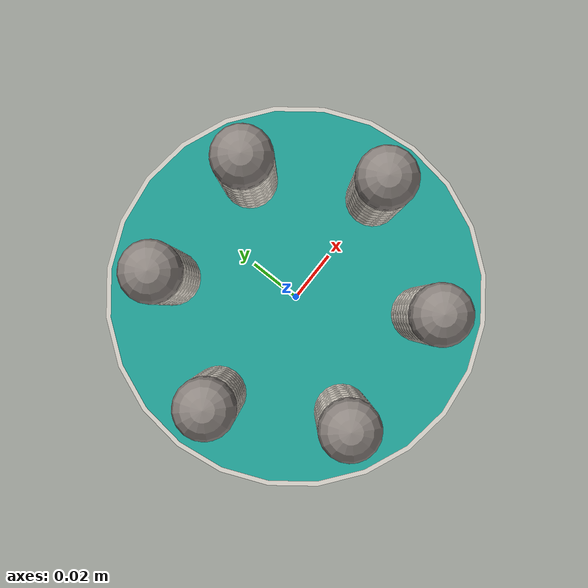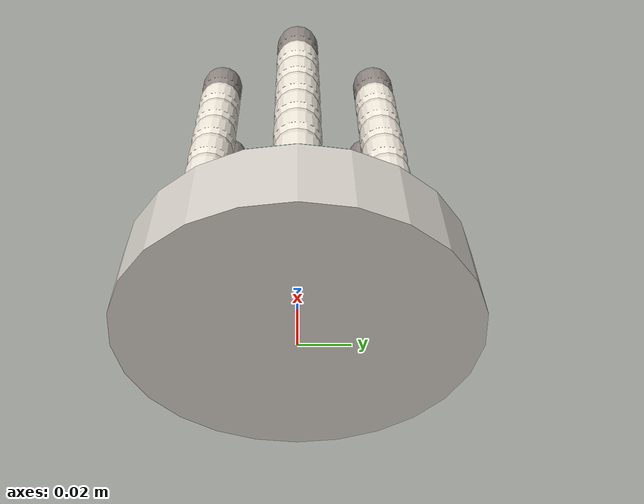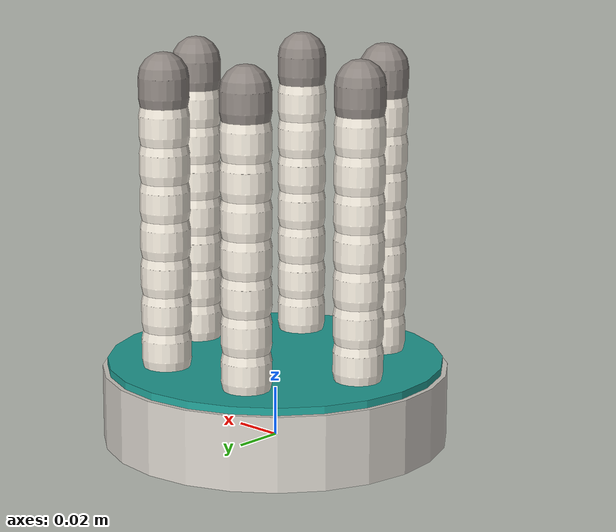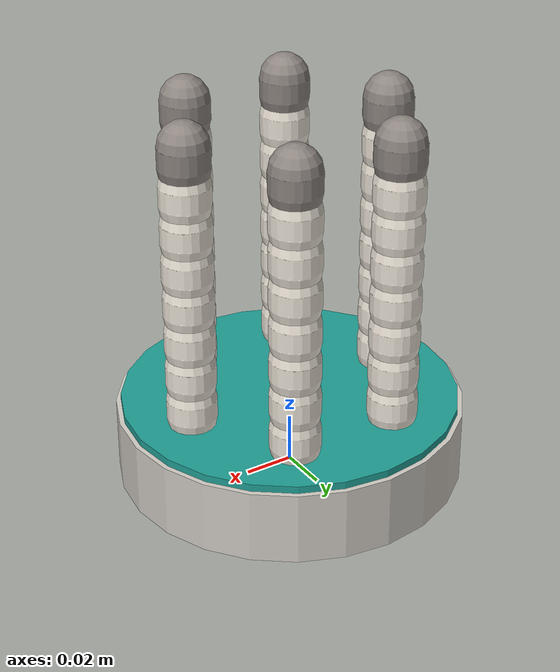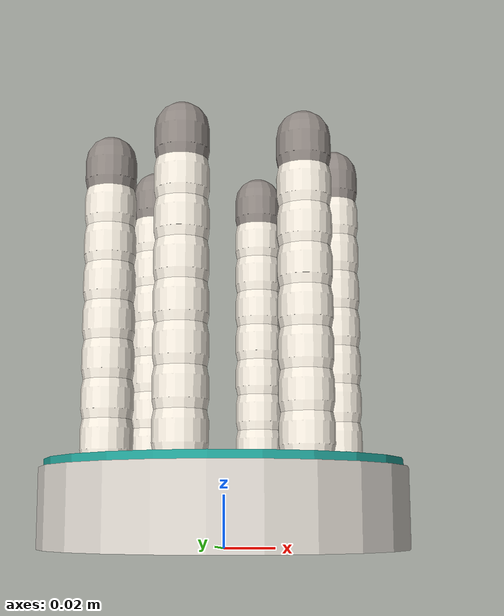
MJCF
<mujoco model="fist6"><compiler angle="radian" autolimits="true"/>
<default><default class="tendril"><joint type="hinge" limited="true" range="-0.663 0.663" damping="0.01" stiffness="4.0" armature="1e-6"/>
<geom condim="4" contype="1" conaffinity="2" friction="0.9 0.02 0.001" solref="0.004 1" solimp="0.92 0.97 0.001"/><site size="0.0005" rgba="0 0 0 0"/>
<tendon width="0.0005" rgba="0.85 0.57 0.16 0"/><position kp="60000" kv="120" ctrllimited="true" ctrlrange="0 0.5" forcelimited="true" forcerange="-200.0 0"/></default></default>
<worldbody><body name="mount" childclass="tendril">
<geom name="disc" type="cylinder" size="0.07 0.015" pos="0 0 0.015" rgba="0.82 0.80 0.77 1" mass="0.6"/>
<geom type="cylinder" size="0.068 0.002" pos="0 0 0.031" rgba="0.12 0.62 0.58 1" contype="0" conaffinity="0" mass="0.001"/>
<site name="t0_b_c0" pos="0.05200 0.00000 0.03"/>
<site name="t0_b_c1" pos="0.04150 0.00606 0.03"/>
<site name="t0_b_c2" pos="0.04150 -0.00606 0.03"/>
<site name="t1_b_c0" pos="0.02950 0.03897 0.03"/>
<site name="t1_b_c1" pos="0.01900 0.04503 0.03"/>
<site name="t1_b_c2" pos="0.01900 0.03291 0.03"/>
<site name="t2_b_c0" pos="-0.01550 0.03897 0.03"/>
<site name="t2_b_c1" pos="-0.02600 0.04503 0.03"/>
<site name="t2_b_c2" pos="-0.02600 0.03291 0.03"/>
<site name="t3_b_c0" pos="-0.03800 0.00000 0.03"/>
<site name="t3_b_c1" pos="-0.04850 0.00606 0.03"/>
<site name="t3_b_c2" pos="-0.04850 -0.00606 0.03"/>
<site name="t4_b_c0" pos="-0.01550 -0.03897 0.03"/>
<site name="t4_b_c1" pos="-0.02600 -0.03291 0.03"/>
<site name="t4_b_c2" pos="-0.02600 -0.04503 0.03"/>
<site name="t5_b_c0" pos="0.02950 -0.03897 0.03"/>
<site name="t5_b_c1" pos="0.01900 -0.03291 0.03"/>
<site name="t5_b_c2" pos="0.01900 -0.04503 0.03"/>
<body name="t0_v0" pos="0.04500 0.00000 0.033">
<joint name="t0_v0_x" axis="1 0 0"/><joint name="t0_v0_y" axis="0 1 0"/>
<geom name="t0_g0" type="capsule" size="0.01 0.00400" pos="0 0 0.0075" mass="0.006" rgba="0.93 0.90 0.85 1"/>
<site name="t0_v0_c0" pos="0.00700 0.00000 0.0075"/>
<site name="t0_v0_c1" pos="-0.00350 0.00606 0.0075"/>
<site name="t0_v0_c2" pos="-0.00350 -0.00606 0.0075"/>
<body name="t0_v1" pos="0 0 0.015">
<joint name="t0_v1_x" axis="1 0 0"/><joint name="t0_v1_y" axis="0 1 0"/>
<geom name="t0_g1" type="capsule" size="0.01 0.00400" pos="0 0 0.0075" mass="0.006" rgba="0.93 0.90 0.85 1"/>
<site name="t0_v1_c0" pos="0.00700 0.00000 0.0075"/>
<site name="t0_v1_c1" pos="-0.00350 0.00606 0.0075"/>
<site name="t0_v1_c2" pos="-0.00350 -0.00606 0.0075"/>
<body name="t0_v2" pos="0 0 0.015">
<joint name="t0_v2_x" axis="1 0 0"/><joint name="t0_v2_y" axis="0 1 0"/>
<geom name="t0_g2" type="capsule" size="0.01 0.00400" pos="0 0 0.0075" mass="0.006" rgba="0.93 0.90 0.85 1"/>
<site name="t0_v2_c0" pos="0.00700 0.00000 0.0075"/>
<site name="t0_v2_c1" pos="-0.00350 0.00606 0.0075"/>
<site name="t0_v2_c2" pos="-0.00350 -0.00606 0.0075"/>
<body name="t0_v3" pos="0 0 0.015">
<joint name="t0_v3_x" axis="1 0 0"/><joint name="t0_v3_y" axis="0 1 0"/>
<geom name="t0_g3" type="capsule" size="0.01 0.00400" pos="0 0 0.0075" mass="0.006" rgba="0.93 0.90 0.85 1"/>
<site name="t0_v3_c0" pos="0.00700 0.00000 0.0075"/>
<site name="t0_v3_c1" pos="-0.00350 0.00606 0.0075"/>
<site name="t0_v3_c2" pos="-0.00350 -0.00606 0.0075"/>
<body name="t0_v4" pos="0 0 0.015">
<joint name="t0_v4_x" axis="1 0 0"/><joint name="t0_v4_y" axis="0 1 0"/>
<geom name="t0_g4" type="capsule" size="0.01 0.00400" pos="0 0 0.0075" mass="0.006" rgba="0.93 0.90 0.85 1"/>
<site name="t0_v4_c0" pos="0.00700 0.00000 0.0075"/>
<site name="t0_v4_c1" pos="-0.00350 0.00606 0.0075"/>
<site name="t0_v4_c2" pos="-0.00350 -0.00606 0.0075"/>
<body name="t0_v5" pos="0 0 0.015">
<joint name="t0_v5_x" axis="1 0 0"/><joint name="t0_v5_y" axis="0 1 0"/>
<geom name="t0_g5" type="capsule" size="0.01 0.00400" pos="0 0 0.0075" mass="0.006" rgba="0.93 0.90 0.85 1"/>
<site name="t0_v5_c0" pos="0.00700 0.00000 0.0075"/>
<site name="t0_v5_c1" pos="-0.00350 0.00606 0.0075"/>
<site name="t0_v5_c2" pos="-0.00350 -0.00606 0.0075"/>
<body name="t0_v6" pos="0 0 0.015">
<joint name="t0_v6_x" axis="1 0 0"/><joint name="t0_v6_y" axis="0 1 0"/>
<geom name="t0_g6" type="capsule" size="0.01 0.00400" pos="0 0 0.0075" mass="0.006" rgba="0.93 0.90 0.85 1"/>
<site name="t0_v6_c0" pos="0.00700 0.00000 0.0075"/>
<site name="t0_v6_c1" pos="-0.00350 0.00606 0.0075"/>
<site name="t0_v6_c2" pos="-0.00350 -0.00606 0.0075"/>
<body name="t0_v7" pos="0 0 0.015">
<joint name="t0_v7_x" axis="1 0 0"/><joint name="t0_v7_y" axis="0 1 0"/>
<geom name="t0_g7" type="capsule" size="0.01 0.00400" pos="0 0 0.0075" mass="0.006" rgba="0.55 0.52 0.50 1"/>
<site name="t0_v7_c0" pos="0.00700 0.00000 0.0075"/>
<site name="t0_v7_c1" pos="-0.00350 0.00606 0.0075"/>
<site name="t0_v7_c2" pos="-0.00350 -0.00606 0.0075"/>
</body></body></body></body></body></body></body></body>
<body name="t1_v0" pos="0.02250 0.03897 0.033">
<joint name="t1_v0_x" axis="1 0 0"/><joint name="t1_v0_y" axis="0 1 0"/>
<geom name="t1_g0" type="capsule" size="0.01 0.00400" pos="0 0 0.0075" mass="0.006" rgba="0.93 0.90 0.85 1"/>
<site name="t1_v0_c0" pos="0.00700 0.00000 0.0075"/>
<site name="t1_v0_c1" pos="-0.00350 0.00606 0.0075"/>
<site name="t1_v0_c2" pos="-0.00350 -0.00606 0.0075"/>
<body name="t1_v1" pos="0 0 0.015">
<joint name="t1_v1_x" axis="1 0 0"/><joint name="t1_v1_y" axis="0 1 0"/>
<geom name="t1_g1" type="capsule" size="0.01 0.00400" pos="0 0 0.0075" mass="0.006" rgba="0.93 0.90 0.85 1"/>
<site name="t1_v1_c0" pos="0.00700 0.00000 0.0075"/>
<site name="t1_v1_c1" pos="-0.00350 0.00606 0.0075"/>
<site name="t1_v1_c2" pos="-0.00350 -0.00606 0.0075"/>
<body name="t1_v2" pos="0 0 0.015">
<joint name="t1_v2_x" axis="1 0 0"/><joint name="t1_v2_y" axis="0 1 0"/>
<geom name="t1_g2" type="capsule" size="0.01 0.00400" pos="0 0 0.0075" mass="0.006" rgba="0.93 0.90 0.85 1"/>
<site name="t1_v2_c0" pos="0.00700 0.00000 0.0075"/>
<site name="t1_v2_c1" pos="-0.00350 0.00606 0.0075"/>
<site name="t1_v2_c2" pos="-0.00350 -0.00606 0.0075"/>
<body name="t1_v3" pos="0 0 0.015">
<joint name="t1_v3_x" axis="1 0 0"/><joint name="t1_v3_y" axis="0 1 0"/>
<geom name="t1_g3" type="capsule" size="0.01 0.00400" pos="0 0 0.0075" mass="0.006" rgba="0.93 0.90 0.85 1"/>
<site name="t1_v3_c0" pos="0.00700 0.00000 0.0075"/>
<site name="t1_v3_c1" pos="-0.00350 0.00606 0.0075"/>
<site name="t1_v3_c2" pos="-0.00350 -0.00606 0.0075"/>
<body name="t1_v4" pos="0 0 0.015">
<joint name="t1_v4_x" axis="1 0 0"/><joint name="t1_v4_y" axis="0 1 0"/>
<geom name="t1_g4" type="capsule" size="0.01 0.00400" pos="0 0 0.0075" mass="0.006" rgba="0.93 0.90 0.85 1"/>
<site name="t1_v4_c0" pos="0.00700 0.00000 0.0075"/>
<site name="t1_v4_c1" pos="-0.00350 0.00606 0.0075"/>
<site name="t1_v4_c2" pos="-0.00350 -0.00606 0.0075"/>
<body name="t1_v5" pos="0 0 0.015">
<joint name="t1_v5_x" axis="1 0 0"/><joint name="t1_v5_y" axis="0 1 0"/>
<geom name="t1_g5" type="capsule" size="0.01 0.00400" pos="0 0 0.0075" mass="0.006" rgba="0.93 0.90 0.85 1"/>
<site name="t1_v5_c0" pos="0.00700 0.00000 0.0075"/>
<site name="t1_v5_c1" pos="-0.00350 0.00606 0.0075"/>
<site name="t1_v5_c2" pos="-0.00350 -0.00606 0.0075"/>
<body name="t1_v6" pos="0 0 0.015">
<joint name="t1_v6_x" axis="1 0 0"/><joint name="t1_v6_y" axis="0 1 0"/>
<geom name="t1_g6" type="capsule" size="0.01 0.00400" pos="0 0 0.0075" mass="0.006" rgba="0.93 0.90 0.85 1"/>
<site name="t1_v6_c0" pos="0.00700 0.00000 0.0075"/>
<site name="t1_v6_c1" pos="-0.00350 0.00606 0.0075"/>
<site name="t1_v6_c2" pos="-0.00350 -0.00606 0.0075"/>
<body name="t1_v7" pos="0 0 0.015">
<joint name="t1_v7_x" axis="1 0 0"/><joint name="t1_v7_y" axis="0 1 0"/>
<geom name="t1_g7" type="capsule" size="0.01 0.00400" pos="0 0 0.0075" mass="0.006" rgba="0.55 0.52 0.50 1"/>
<site name="t1_v7_c0" pos="0.00700 0.00000 0.0075"/>
<site name="t1_v7_c1" pos="-0.00350 0.00606 0.0075"/>
<site name="t1_v7_c2" pos="-0.00350 -0.00606 0.0075"/>
</body></body></body></body></body></body></body></body>
<body name="t2_v0" pos="-0.02250 0.03897 0.033">
<joint name="t2_v0_x" axis="1 0 0"/><joint name="t2_v0_y" axis="0 1 0"/>
<geom name="t2_g0" type="capsule" size="0.01 0.00400" pos="0 0 0.0075" mass="0.006" rgba="0.93 0.90 0.85 1"/>
<site name="t2_v0_c0" pos="0.00700 0.00000 0.0075"/>
<site name="t2_v0_c1" pos="-0.00350 0.00606 0.0075"/>
<site name="t2_v0_c2" pos="-0.00350 -0.00606 0.0075"/>
<body name="t2_v1" pos="0 0 0.015">
<joint name="t2_v1_x" axis="1 0 0"/><joint name="t2_v1_y" axis="0 1 0"/>
<geom name="t2_g1" type="capsule" size="0.01 0.00400" pos="0 0 0.0075" mass="0.006" rgba="0.93 0.90 0.85 1"/>
<site name="t2_v1_c0" pos="0.00700 0.00000 0.0075"/>
<site name="t2_v1_c1" pos="-0.00350 0.00606 0.0075"/>
<site name="t2_v1_c2" pos="-0.00350 -0.00606 0.0075"/>
<body name="t2_v2" pos="0 0 0.015">
<joint name="t2_v2_x" axis="1 0 0"/><joint name="t2_v2_y" axis="0 1 0"/>
<geom name="t2_g2" type="capsule" size="0.01 0.00400" pos="0 0 0.0075" mass="0.006" rgba="0.93 0.90 0.85 1"/>
<site name="t2_v2_c0" pos="0.00700 0.00000 0.0075"/>
<site name="t2_v2_c1" pos="-0.00350 0.00606 0.0075"/>
<site name="t2_v2_c2" pos="-0.00350 -0.00606 0.0075"/>
<body name="t2_v3" pos="0 0 0.015">
<joint name="t2_v3_x" axis="1 0 0"/><joint name="t2_v3_y" axis="0 1 0"/>
<geom name="t2_g3" type="capsule" size="0.01 0.00400" pos="0 0 0.0075" mass="0.006" rgba="0.93 0.90 0.85 1"/>
<site name="t2_v3_c0" pos="0.00700 0.00000 0.0075"/>
<site name="t2_v3_c1" pos="-0.00350 0.00606 0.0075"/>
<site name="t2_v3_c2" pos="-0.00350 -0.00606 0.0075"/>
<body name="t2_v4" pos="0 0 0.015">
<joint name="t2_v4_x" axis="1 0 0"/><joint name="t2_v4_y" axis="0 1 0"/>
<geom name="t2_g4" type="capsule" size="0.01 0.00400" pos="0 0 0.0075" mass="0.006" rgba="0.93 0.90 0.85 1"/>
<site name="t2_v4_c0" pos="0.00700 0.00000 0.0075"/>
<site name="t2_v4_c1" pos="-0.00350 0.00606 0.0075"/>
<site name="t2_v4_c2" pos="-0.00350 -0.00606 0.0075"/>
<body name="t2_v5" pos="0 0 0.015">
<joint name="t2_v5_x" axis="1 0 0"/><joint name="t2_v5_y" axis="0 1 0"/>
<geom name="t2_g5" type="capsule" size="0.01 0.00400" pos="0 0 0.0075" mass="0.006" rgba="0.93 0.90 0.85 1"/>
<site name="t2_v5_c0" pos="0.00700 0.00000 0.0075"/>
<site name="t2_v5_c1" pos="-0.00350 0.00606 0.0075"/>
<site name="t2_v5_c2" pos="-0.00350 -0.00606 0.0075"/>
<body name="t2_v6" pos="0 0 0.015">
<joint name="t2_v6_x" axis="1 0 0"/><joint name="t2_v6_y" axis="0 1 0"/>
<geom name="t2_g6" type="capsule" size="0.01 0.00400" pos="0 0 0.0075" mass="0.006" rgba="0.93 0.90 0.85 1"/>
<site name="t2_v6_c0" pos="0.00700 0.00000 0.0075"/>
<site name="t2_v6_c1" pos="-0.00350 0.00606 0.0075"/>
<site name="t2_v6_c2" pos="-0.00350 -0.00606 0.0075"/>
<body name="t2_v7" pos="0 0 0.015">
<joint name="t2_v7_x" axis="1 0 0"/><joint name="t2_v7_y" axis="0 1 0"/>
<geom name="t2_g7" type="capsule" size="0.01 0.00400" pos="0 0 0.0075" mass="0.006" rgba="0.55 0.52 0.50 1"/>
<site name="t2_v7_c0" pos="0.00700 0.00000 0.0075"/>
<site name="t2_v7_c1" pos="-0.00350 0.00606 0.0075"/>
<site name="t2_v7_c2" pos="-0.00350 -0.00606 0.0075"/>
</body></body></body></body></body></body></body></body>
<body name="t3_v0" pos="-0.04500 0.00000 0.033">
<joint name="t3_v0_x" axis="1 0 0"/><joint name="t3_v0_y" axis="0 1 0"/>
<geom name="t3_g0" type="capsule" size="0.01 0.00400" pos="0 0 0.0075" mass="0.006" rgba="0.93 0.90 0.85 1"/>
<site name="t3_v0_c0" pos="0.00700 0.00000 0.0075"/>
<site name="t3_v0_c1" pos="-0.00350 0.00606 0.0075"/>
<site name="t3_v0_c2" pos="-0.00350 -0.00606 0.0075"/>
<body name="t3_v1" pos="0 0 0.015">
<joint name="t3_v1_x" axis="1 0 0"/><joint name="t3_v1_y" axis="0 1 0"/>
<geom name="t3_g1" type="capsule" size="0.01 0.00400" pos="0 0 0.0075" mass="0.006" rgba="0.93 0.90 0.85 1"/>
<site name="t3_v1_c0" pos="0.00700 0.00000 0.0075"/>
<site name="t3_v1_c1" pos="-0.00350 0.00606 0.0075"/>
<site name="t3_v1_c2" pos="-0.00350 -0.00606 0.0075"/>
<body name="t3_v2" pos="0 0 0.015">
<joint name="t3_v2_x" axis="1 0 0"/><joint name="t3_v2_y" axis="0 1 0"/>
<geom name="t3_g2" type="capsule" size="0.01 0.00400" pos="0 0 0.0075" mass="0.006" rgba="0.93 0.90 0.85 1"/>
<site name="t3_v2_c0" pos="0.00700 0.00000 0.0075"/>
<site name="t3_v2_c1" pos="-0.00350 0.00606 0.0075"/>
<site name="t3_v2_c2" pos="-0.00350 -0.00606 0.0075"/>
<body name="t3_v3" pos="0 0 0.015">
<joint name="t3_v3_x" axis="1 0 0"/><joint name="t3_v3_y" axis="0 1 0"/>
<geom name="t3_g3" type="capsule" size="0.01 0.00400" pos="0 0 0.0075" mass="0.006" rgba="0.93 0.90 0.85 1"/>
<site name="t3_v3_c0" pos="0.00700 0.00000 0.0075"/>
<site name="t3_v3_c1" pos="-0.00350 0.00606 0.0075"/>
<site name="t3_v3_c2" pos="-0.00350 -0.00606 0.0075"/>
<body name="t3_v4" pos="0 0 0.015">
<joint name="t3_v4_x" axis="1 0 0"/><joint name="t3_v4_y" axis="0 1 0"/>
<geom name="t3_g4" type="capsule" size="0.01 0.00400" pos="0 0 0.0075" mass="0.006" rgba="0.93 0.90 0.85 1"/>
<site name="t3_v4_c0" pos="0.00700 0.00000 0.0075"/>
<site name="t3_v4_c1" pos="-0.00350 0.00606 0.0075"/>
<site name="t3_v4_c2" pos="-0.00350 -0.00606 0.0075"/>
<body name="t3_v5" pos="0 0 0.015">
<joint name="t3_v5_x" axis="1 0 0"/><joint name="t3_v5_y" axis="0 1 0"/>
<geom name="t3_g5" type="capsule" size="0.01 0.00400" pos="0 0 0.0075" mass="0.006" rgba="0.93 0.90 0.85 1"/>
<site name="t3_v5_c0" pos="0.00700 0.00000 0.0075"/>
<site name="t3_v5_c1" pos="-0.00350 0.00606 0.0075"/>
<site name="t3_v5_c2" pos="-0.00350 -0.00606 0.0075"/>
<body name="t3_v6" pos="0 0 0.015">
<joint name="t3_v6_x" axis="1 0 0"/><joint name="t3_v6_y" axis="0 1 0"/>
<geom name="t3_g6" type="capsule" size="0.01 0.00400" pos="0 0 0.0075" mass="0.006" rgba="0.93 0.90 0.85 1"/>
<site name="t3_v6_c0" pos="0.00700 0.00000 0.0075"/>
<site name="t3_v6_c1" pos="-0.00350 0.00606 0.0075"/>
<site name="t3_v6_c2" pos="-0.00350 -0.00606 0.0075"/>
<body name="t3_v7" pos="0 0 0.015">
<joint name="t3_v7_x" axis="1 0 0"/><joint name="t3_v7_y" axis="0 1 0"/>
<geom name="t3_g7" type="capsule" size="0.01 0.00400" pos="0 0 0.0075" mass="0.006" rgba="0.55 0.52 0.50 1"/>
<site name="t3_v7_c0" pos="0.00700 0.00000 0.0075"/>
<site name="t3_v7_c1" pos="-0.00350 0.00606 0.0075"/>
<site name="t3_v7_c2" pos="-0.00350 -0.00606 0.0075"/>
</body></body></body></body></body></body></body></body>
<body name="t4_v0" pos="-0.02250 -0.03897 0.033">
<joint name="t4_v0_x" axis="1 0 0"/><joint name="t4_v0_y" axis="0 1 0"/>
<geom name="t4_g0" type="capsule" size="0.01 0.00400" pos="0 0 0.0075" mass="0.006" rgba="0.93 0.90 0.85 1"/>
<site name="t4_v0_c0" pos="0.00700 0.00000 0.0075"/>
<site name="t4_v0_c1" pos="-0.00350 0.00606 0.0075"/>
<site name="t4_v0_c2" pos="-0.00350 -0.00606 0.0075"/>
<body name="t4_v1" pos="0 0 0.015">
<joint name="t4_v1_x" axis="1 0 0"/><joint name="t4_v1_y" axis="0 1 0"/>
<geom name="t4_g1" type="capsule" size="0.01 0.00400" pos="0 0 0.0075" mass="0.006" rgba="0.93 0.90 0.85 1"/>
<site name="t4_v1_c0" pos="0.00700 0.00000 0.0075"/>
<site name="t4_v1_c1" pos="-0.00350 0.00606 0.0075"/>
<site name="t4_v1_c2" pos="-0.00350 -0.00606 0.0075"/>
<body name="t4_v2" pos="0 0 0.015">
<joint name="t4_v2_x" axis="1 0 0"/><joint name="t4_v2_y" axis="0 1 0"/>
<geom name="t4_g2" type="capsule" size="0.01 0.00400" pos="0 0 0.0075" mass="0.006" rgba="0.93 0.90 0.85 1"/>
<site name="t4_v2_c0" pos="0.00700 0.00000 0.0075"/>
<site name="t4_v2_c1" pos="-0.00350 0.00606 0.0075"/>
<site name="t4_v2_c2" pos="-0.00350 -0.00606 0.0075"/>
<body name="t4_v3" pos="0 0 0.015">
<joint name="t4_v3_x" axis="1 0 0"/><joint name="t4_v3_y" axis="0 1 0"/>
<geom name="t4_g3" type="capsule" size="0.01 0.00400" pos="0 0 0.0075" mass="0.006" rgba="0.93 0.90 0.85 1"/>
<site name="t4_v3_c0" pos="0.00700 0.00000 0.0075"/>
<site name="t4_v3_c1" pos="-0.00350 0.00606 0.0075"/>
<site name="t4_v3_c2" pos="-0.00350 -0.00606 0.0075"/>
<body name="t4_v4" pos="0 0 0.015">
<joint name="t4_v4_x" axis="1 0 0"/><joint name="t4_v4_y" axis="0 1 0"/>
<geom name="t4_g4" type="capsule" size="0.01 0.00400" pos="0 0 0.0075" mass="0.006" rgba="0.93 0.90 0.85 1"/>
<site name="t4_v4_c0" pos="0.00700 0.00000 0.0075"/>
<site name="t4_v4_c1" pos="-0.00350 0.00606 0.0075"/>
<site name="t4_v4_c2" pos="-0.00350 -0.00606 0.0075"/>
<body name="t4_v5" pos="0 0 0.015">
<joint name="t4_v5_x" axis="1 0 0"/><joint name="t4_v5_y" axis="0 1 0"/>
<geom name="t4_g5" type="capsule" size="0.01 0.00400" pos="0 0 0.0075" mass="0.006" rgba="0.93 0.90 0.85 1"/>
<site name="t4_v5_c0" pos="0.00700 0.00000 0.0075"/>
<site name="t4_v5_c1" pos="-0.00350 0.00606 0.0075"/>
<site name="t4_v5_c2" pos="-0.00350 -0.00606 0.0075"/>
<body name="t4_v6" pos="0 0 0.015">
<joint name="t4_v6_x" axis="1 0 0"/><joint name="t4_v6_y" axis="0 1 0"/>
<geom name="t4_g6" type="capsule" size="0.01 0.00400" pos="0 0 0.0075" mass="0.006" rgba="0.93 0.90 0.85 1"/>
<site name="t4_v6_c0" pos="0.00700 0.00000 0.0075"/>
<site name="t4_v6_c1" pos="-0.00350 0.00606 0.0075"/>
<site name="t4_v6_c2" pos="-0.00350 -0.00606 0.0075"/>
<body name="t4_v7" pos="0 0 0.015">
<joint name="t4_v7_x" axis="1 0 0"/><joint name="t4_v7_y" axis="0 1 0"/>
<geom name="t4_g7" type="capsule" size="0.01 0.00400" pos="0 0 0.0075" mass="0.006" rgba="0.55 0.52 0.50 1"/>
<site name="t4_v7_c0" pos="0.00700 0.00000 0.0075"/>
<site name="t4_v7_c1" pos="-0.00350 0.00606 0.0075"/>
<site name="t4_v7_c2" pos="-0.00350 -0.00606 0.0075"/>
</body></body></body></body></body></body></body></body>
<body name="t5_v0" pos="0.02250 -0.03897 0.033">
<joint name="t5_v0_x" axis="1 0 0"/><joint name="t5_v0_y" axis="0 1 0"/>
<geom name="t5_g0" type="capsule" size="0.01 0.00400" pos="0 0 0.0075" mass="0.006" rgba="0.93 0.90 0.85 1"/>
<site name="t5_v0_c0" pos="0.00700 0.00000 0.0075"/>
<site name="t5_v0_c1" pos="-0.00350 0.00606 0.0075"/>
<site name="t5_v0_c2" pos="-0.00350 -0.00606 0.0075"/>
<body name="t5_v1" pos="0 0 0.015">
<joint name="t5_v1_x" axis="1 0 0"/><joint name="t5_v1_y" axis="0 1 0"/>
<geom name="t5_g1" type="capsule" size="0.01 0.00400" pos="0 0 0.0075" mass="0.006" rgba="0.93 0.90 0.85 1"/>
<site name="t5_v1_c0" pos="0.00700 0.00000 0.0075"/>
<site name="t5_v1_c1" pos="-0.00350 0.00606 0.0075"/>
<site name="t5_v1_c2" pos="-0.00350 -0.00606 0.0075"/>
<body name="t5_v2" pos="0 0 0.015">
<joint name="t5_v2_x" axis="1 0 0"/><joint name="t5_v2_y" axis="0 1 0"/>
<geom name="t5_g2" type="capsule" size="0.01 0.00400" pos="0 0 0.0075" mass="0.006" rgba="0.93 0.90 0.85 1"/>
<site name="t5_v2_c0" pos="0.00700 0.00000 0.0075"/>
<site name="t5_v2_c1" pos="-0.00350 0.00606 0.0075"/>
<site name="t5_v2_c2" pos="-0.00350 -0.00606 0.0075"/>
<body name="t5_v3" pos="0 0 0.015">
<joint name="t5_v3_x" axis="1 0 0"/><joint name="t5_v3_y" axis="0 1 0"/>
<geom name="t5_g3" type="capsule" size="0.01 0.00400" pos="0 0 0.0075" mass="0.006" rgba="0.93 0.90 0.85 1"/>
<site name="t5_v3_c0" pos="0.00700 0.00000 0.0075"/>
<site name="t5_v3_c1" pos="-0.00350 0.00606 0.0075"/>
<site name="t5_v3_c2" pos="-0.00350 -0.00606 0.0075"/>
<body name="t5_v4" pos="0 0 0.015">
<joint name="t5_v4_x" axis="1 0 0"/><joint name="t5_v4_y" axis="0 1 0"/>
<geom name="t5_g4" type="capsule" size="0.01 0.00400" pos="0 0 0.0075" mass="0.006" rgba="0.93 0.90 0.85 1"/>
<site name="t5_v4_c0" pos="0.00700 0.00000 0.0075"/>
<site name="t5_v4_c1" pos="-0.00350 0.00606 0.0075"/>
<site name="t5_v4_c2" pos="-0.00350 -0.00606 0.0075"/>
<body name="t5_v5" pos="0 0 0.015">
<joint name="t5_v5_x" axis="1 0 0"/><joint name="t5_v5_y" axis="0 1 0"/>
<geom name="t5_g5" type="capsule" size="0.01 0.00400" pos="0 0 0.0075" mass="0.006" rgba="0.93 0.90 0.85 1"/>
<site name="t5_v5_c0" pos="0.00700 0.00000 0.0075"/>
<site name="t5_v5_c1" pos="-0.00350 0.00606 0.0075"/>
<site name="t5_v5_c2" pos="-0.00350 -0.00606 0.0075"/>
<body name="t5_v6" pos="0 0 0.015">
<joint name="t5_v6_x" axis="1 0 0"/><joint name="t5_v6_y" axis="0 1 0"/>
<geom name="t5_g6" type="capsule" size="0.01 0.00400" pos="0 0 0.0075" mass="0.006" rgba="0.93 0.90 0.85 1"/>
<site name="t5_v6_c0" pos="0.00700 0.00000 0.0075"/>
<site name="t5_v6_c1" pos="-0.00350 0.00606 0.0075"/>
<site name="t5_v6_c2" pos="-0.00350 -0.00606 0.0075"/>
<body name="t5_v7" pos="0 0 0.015">
<joint name="t5_v7_x" axis="1 0 0"/><joint name="t5_v7_y" axis="0 1 0"/>
<geom name="t5_g7" type="capsule" size="0.01 0.00400" pos="0 0 0.0075" mass="0.006" rgba="0.55 0.52 0.50 1"/>
<site name="t5_v7_c0" pos="0.00700 0.00000 0.0075"/>
<site name="t5_v7_c1" pos="-0.00350 0.00606 0.0075"/>
<site name="t5_v7_c2" pos="-0.00350 -0.00606 0.0075"/>
</body></body></body></body></body></body></body></body>
</body></worldbody><tendon>
<spatial name="t0_c0" class="tendril"><site site="t0_b_c0"/><site site="t0_v0_c0"/><site site="t0_v1_c0"/><site site="t0_v2_c0"/><site site="t0_v3_c0"/><site site="t0_v4_c0"/><site site="t0_v5_c0"/><site site="t0_v6_c0"/><site site="t0_v7_c0"/></spatial>
<spatial name="t0_c1" class="tendril"><site site="t0_b_c1"/><site site="t0_v0_c1"/><site site="t0_v1_c1"/><site site="t0_v2_c1"/><site site="t0_v3_c1"/><site site="t0_v4_c1"/><site site="t0_v5_c1"/><site site="t0_v6_c1"/><site site="t0_v7_c1"/></spatial>
<spatial name="t0_c2" class="tendril"><site site="t0_b_c2"/><site site="t0_v0_c2"/><site site="t0_v1_c2"/><site site="t0_v2_c2"/><site site="t0_v3_c2"/><site site="t0_v4_c2"/><site site="t0_v5_c2"/><site site="t0_v6_c2"/><site site="t0_v7_c2"/></spatial>
<spatial name="t1_c0" class="tendril"><site site="t1_b_c0"/><site site="t1_v0_c0"/><site site="t1_v1_c0"/><site site="t1_v2_c0"/><site site="t1_v3_c0"/><site site="t1_v4_c0"/><site site="t1_v5_c0"/><site site="t1_v6_c0"/><site site="t1_v7_c0"/></spatial>
<spatial name="t1_c1" class="tendril"><site site="t1_b_c1"/><site site="t1_v0_c1"/><site site="t1_v1_c1"/><site site="t1_v2_c1"/><site site="t1_v3_c1"/><site site="t1_v4_c1"/><site site="t1_v5_c1"/><site site="t1_v6_c1"/><site site="t1_v7_c1"/></spatial>
<spatial name="t1_c2" class="tendril"><site site="t1_b_c2"/><site site="t1_v0_c2"/><site site="t1_v1_c2"/><site site="t1_v2_c2"/><site site="t1_v3_c2"/><site site="t1_v4_c2"/><site site="t1_v5_c2"/><site site="t1_v6_c2"/><site site="t1_v7_c2"/></spatial>
<spatial name="t2_c0" class="tendril"><site site="t2_b_c0"/><site site="t2_v0_c0"/><site site="t2_v1_c0"/><site site="t2_v2_c0"/><site site="t2_v3_c0"/><site site="t2_v4_c0"/><site site="t2_v5_c0"/><site site="t2_v6_c0"/><site site="t2_v7_c0"/></spatial>
<spatial name="t2_c1" class="tendril"><site site="t2_b_c1"/><site site="t2_v0_c1"/><site site="t2_v1_c1"/><site site="t2_v2_c1"/><site site="t2_v3_c1"/><site site="t2_v4_c1"/><site site="t2_v5_c1"/><site site="t2_v6_c1"/><site site="t2_v7_c1"/></spatial>
<spatial name="t2_c2" class="tendril"><site site="t2_b_c2"/><site site="t2_v0_c2"/><site site="t2_v1_c2"/><site site="t2_v2_c2"/><site site="t2_v3_c2"/><site site="t2_v4_c2"/><site site="t2_v5_c2"/><site site="t2_v6_c2"/><site site="t2_v7_c2"/></spatial>
<spatial name="t3_c0" class="tendril"><site site="t3_b_c0"/><site site="t3_v0_c0"/><site site="t3_v1_c0"/><site site="t3_v2_c0"/><site site="t3_v3_c0"/><site site="t3_v4_c0"/><site site="t3_v5_c0"/><site site="t3_v6_c0"/><site site="t3_v7_c0"/></spatial>
<spatial name="t3_c1" class="tendril"><site site="t3_b_c1"/><site site="t3_v0_c1"/><site site="t3_v1_c1"/><site site="t3_v2_c1"/><site site="t3_v3_c1"/><site site="t3_v4_c1"/><site site="t3_v5_c1"/><site site="t3_v6_c1"/><site site="t3_v7_c1"/></spatial>
<spatial name="t3_c2" class="tendril"><site site="t3_b_c2"/><site site="t3_v0_c2"/><site site="t3_v1_c2"/><site site="t3_v2_c2"/><site site="t3_v3_c2"/><site site="t3_v4_c2"/><site site="t3_v5_c2"/><site site="t3_v6_c2"/><site site="t3_v7_c2"/></spatial>
<spatial name="t4_c0" class="tendril"><site site="t4_b_c0"/><site site="t4_v0_c0"/><site site="t4_v1_c0"/><site site="t4_v2_c0"/><site site="t4_v3_c0"/><site site="t4_v4_c0"/><site site="t4_v5_c0"/><site site="t4_v6_c0"/><site site="t4_v7_c0"/></spatial>
<spatial name="t4_c1" class="tendril"><site site="t4_b_c1"/><site site="t4_v0_c1"/><site site="t4_v1_c1"/><site site="t4_v2_c1"/><site site="t4_v3_c1"/><site site="t4_v4_c1"/><site site="t4_v5_c1"/><site site="t4_v6_c1"/><site site="t4_v7_c1"/></spatial>
<spatial name="t4_c2" class="tendril"><site site="t4_b_c2"/><site site="t4_v0_c2"/><site site="t4_v1_c2"/><site site="t4_v2_c2"/><site site="t4_v3_c2"/><site site="t4_v4_c2"/><site site="t4_v5_c2"/><site site="t4_v6_c2"/><site site="t4_v7_c2"/></spatial>
<spatial name="t5_c0" class="tendril"><site site="t5_b_c0"/><site site="t5_v0_c0"/><site site="t5_v1_c0"/><site site="t5_v2_c0"/><site site="t5_v3_c0"/><site site="t5_v4_c0"/><site site="t5_v5_c0"/><site site="t5_v6_c0"/><site site="t5_v7_c0"/></spatial>
<spatial name="t5_c1" class="tendril"><site site="t5_b_c1"/><site site="t5_v0_c1"/><site site="t5_v1_c1"/><site site="t5_v2_c1"/><site site="t5_v3_c1"/><site site="t5_v4_c1"/><site site="t5_v5_c1"/><site site="t5_v6_c1"/><site site="t5_v7_c1"/></spatial>
<spatial name="t5_c2" class="tendril"><site site="t5_b_c2"/><site site="t5_v0_c2"/><site site="t5_v1_c2"/><site site="t5_v2_c2"/><site site="t5_v3_c2"/><site site="t5_v4_c2"/><site site="t5_v5_c2"/><site site="t5_v6_c2"/><site site="t5_v7_c2"/></spatial>
</tendon><actuator><position name="t0_c0" class="tendril" tendon="t0_c0"/><position name="t0_c1" class="tendril" tendon="t0_c1"/><position name="t0_c2" class="tendril" tendon="t0_c2"/><position name="t1_c0" class="tendril" tendon="t1_c0"/><position name="t1_c1" class="tendril" tendon="t1_c1"/><position name="t1_c2" class="tendril" tendon="t1_c2"/><position name="t2_c0" class="tendril" tendon="t2_c0"/><position name="t2_c1" class="tendril" tendon="t2_c1"/><position name="t2_c2" class="tendril" tendon="t2_c2"/><position name="t3_c0" class="tendril" tendon="t3_c0"/><position name="t3_c1" class="tendril" tendon="t3_c1"/><position name="t3_c2" class="tendril" tendon="t3_c2"/><position name="t4_c0" class="tendril" tendon="t4_c0"/><position name="t4_c1" class="tendril" tendon="t4_c1"/><position name="t4_c2" class="tendril" tendon="t4_c2"/><position name="t5_c0" class="tendril" tendon="t5_c0"/><position name="t5_c1" class="tendril" tendon="t5_c1"/><position name="t5_c2" class="tendril" tendon="t5_c2"/></actuator></mujoco>
